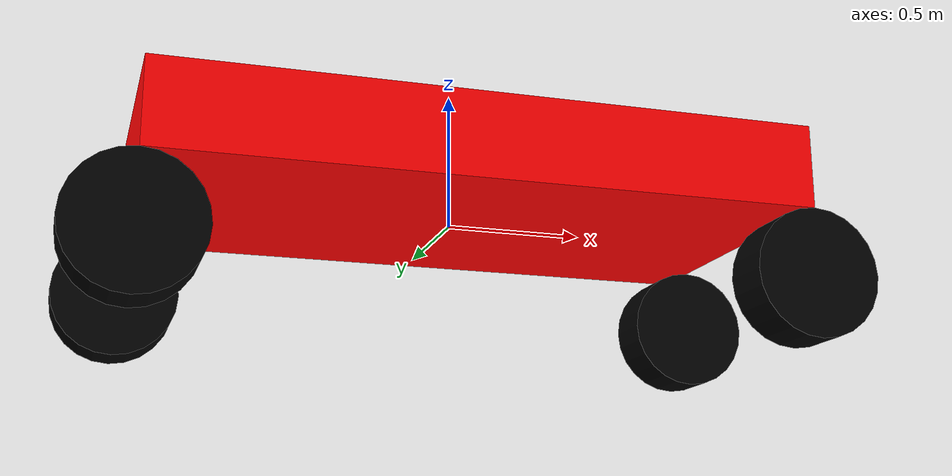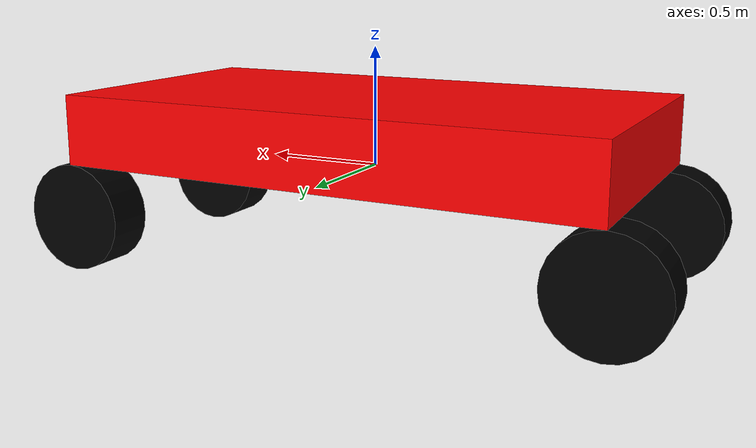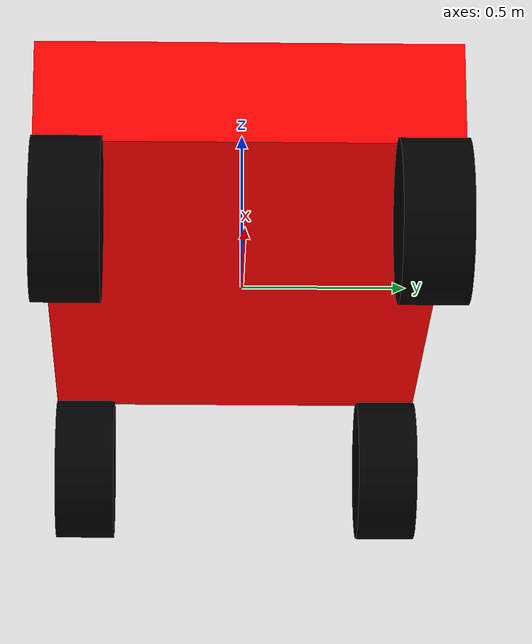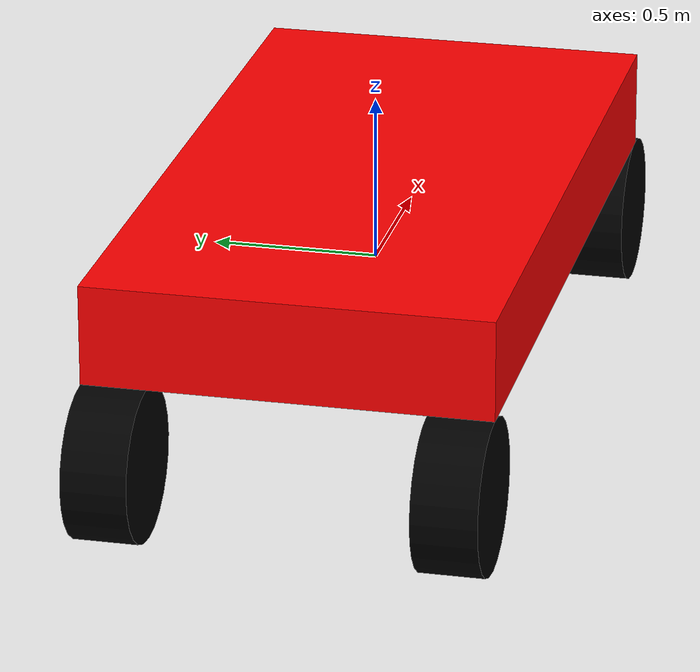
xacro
<?xml version="1.0"?>
<robot name="golf_cart" xmlns:xacro="http://www.ros.org/wiki/xacro">

  <!-- ===================== PARAMETERS (METERS) ===================== -->
  <xacro:property name="wheelbase" value="2.30"/>        <!-- front axle to rear axle -->
  <xacro:property name="rear_track" value="1.005"/>      <!-- distance between rear wheels -->
  <xacro:property name="wheel_radius" value="0.23"/>     <!-- 46 cm diameter -->
  <xacro:property name="wheel_width" value="0.19304"/>   <!-- 19.304 cm -->
  <xacro:property name="base_height" value="0.30"/>      <!-- chassis height -->
  <xacro:property name="base_width" value="1.20"/>

  <!-- ===================== MATERIALS ===================== -->
  <material name="red">
    <color rgba="1 0 0 1"/>
  </material>

  <material name="black">
    <color rgba="0 0 0 1"/>
  </material>

  <!-- ===================== BASE FOOTPRINT ===================== -->
  <link name="base_footprint"/>

  <joint name="base_joint" type="fixed">
    <parent link="base_footprint"/>
    <child link="base_link"/>
    <!-- base_link origin at chassis center -->
    <origin xyz="0 0 ${base_height/2}" rpy="0 0 0"/>
  </joint>

  <!-- ===================== BASE LINK ===================== -->
  <link name="base_link">
    <visual>
      <geometry>
        <box size="${wheelbase} ${base_width} ${base_height}"/>
      </geometry>
      <material name="red"/>
    </visual>

    <collision>
      <geometry>
        <box size="${wheelbase} ${base_width} ${base_height}"/>
      </geometry>
    </collision>

    <inertial>
      <mass value="150"/>
      <origin xyz="0 0 0"/>
      <inertia
        ixx="20" iyy="40" izz="50"
        ixy="0" ixz="0" iyz="0"/>
    </inertial>
  </link>

  <!-- ===================== WHEEL MACRO ===================== -->
  <xacro:macro name="wheel" params="name">
    <link name="${name}">
      <visual>
        <geometry>
          <cylinder radius="${wheel_radius}" length="${wheel_width}"/>
        </geometry>
        <material name="black"/>
      </visual>

      <collision>
        <geometry>
          <cylinder radius="${wheel_radius}" length="${wheel_width}"/>
        </geometry>
      </collision>

      <inertial>
        <mass value="10"/>
        <origin xyz="0 0 0"/>
        <inertia
          ixx="0.1" iyy="0.1" izz="0.1"
          ixy="0" ixz="0" iyz="0"/>
      </inertial>
    </link>
  </xacro:macro>

  <!-- ===================== WHEELS ===================== -->
  <xacro:wheel name="rear_left_wheel"/>
  <xacro:wheel name="rear_right_wheel"/>
  <xacro:wheel name="front_left_wheel"/>
  <xacro:wheel name="front_right_wheel"/>

  <!-- ===================== WHEEL JOINT POSITIONS ===================== -->
  <!-- wheel z = -(base_height/2 + wheel_radius) = -(0.15 + 0.23) = -0.38 -->

  <!-- REAR LEFT -->
  <joint name="rear_left_wheel_joint" type="continuous">
    <parent link="base_link"/>
    <child link="rear_left_wheel"/>
    <origin xyz="-1.15  0.5025 -0.38" rpy="1.5708 0 0"/>
    <axis xyz="0 0 1"/>
  </joint>

  <!-- REAR RIGHT -->
  <joint name="rear_right_wheel_joint" type="continuous">
    <parent link="base_link"/>
    <child link="rear_right_wheel"/>
    <origin xyz="-1.15 -0.5025 -0.38" rpy="1.5708 0 0"/>
    <axis xyz="0 0 1"/>
  </joint>

  <!-- FRONT LEFT -->
  <joint name="front_left_wheel_joint" type="continuous">
    <parent link="base_link"/>
    <child link="front_left_wheel"/>
    <origin xyz=" 1.15  0.5025 -0.38" rpy="1.5708 0 0"/>
    <axis xyz="0 0 1"/>
  </joint>

  <!-- FRONT RIGHT -->
  <joint name="front_right_wheel_joint" type="continuous">
    <parent link="base_link"/>
    <child link="front_right_wheel"/>
    <origin xyz=" 1.15 -0.5025 -0.38" rpy="1.5708 0 0"/>
    <axis xyz="0 0 1"/>
  </joint>

</robot>
